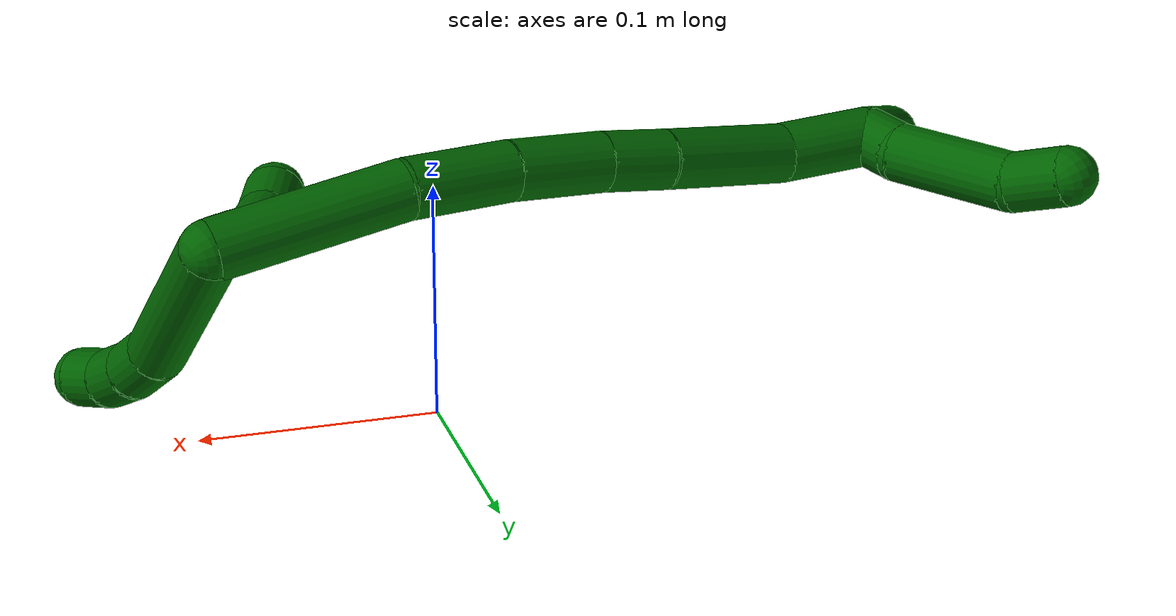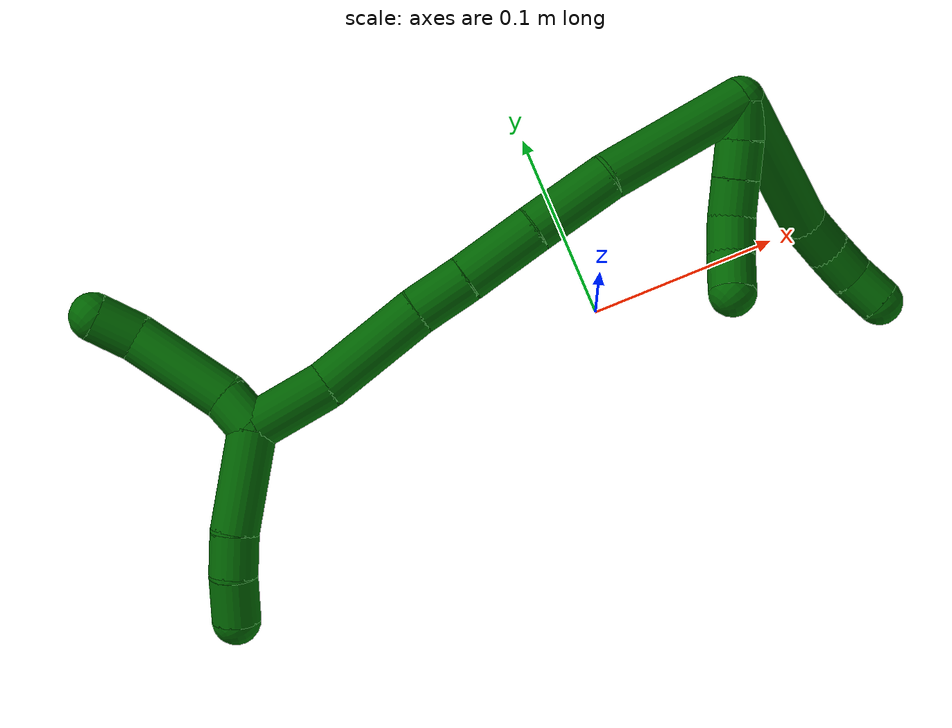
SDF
<sdf version="1.7">
 <world name="default">
  <model name="6">
   <static>0</static>
   <link name="6">
    <collision name="collision-cylinder-e_1_2_8">
     <pose>0.016003 -0.04045 -0.000589 1.58536 0.376682 0.382076</pose>
     <geometry><cylinder><radius>0.0125</radius><length>0.087009</length></cylinder></geometry>
     <surface>
      <friction><ode><mu>1.16</mu><mu2>1.16</mu2><slip1>0</slip1><slip2>0</slip2></ode></friction>
      <contact><ode><kp>1e+06</kp><kd>1</kd><max_vel>0</max_vel><min_depth>0.001</min_depth></ode></contact>
     </surface>
    </collision>
    <visual name="visual-cylinder-e_1_2_8">
     <pose>0.016003 -0.04045 -0.000589 1.58536 0.376682 0.382076</pose>
     <geometry><cylinder><radius>0.0125</radius><length>0.087009</length></cylinder></geometry>
     <material><ambient>0 0.392157 0.003922 1</ambient></material>
    </visual>
    <collision name="collision-cylinder-e_2_8_9">
     <pose>0.037852 -0.090353 -0.002786 1.73926 0.547586 0.642259</pose>
     <geometry><cylinder><radius>0.0125</radius><length>0.022459</length></cylinder></geometry>
     <surface>
      <friction><ode><mu>1.16</mu><mu2>1.16</mu2><slip1>0</slip1><slip2>0</slip2></ode></friction>
      <contact><ode><kp>1e+06</kp><kd>1</kd><max_vel>0</max_vel><min_depth>0.001</min_depth></ode></contact>
     </surface>
    </collision>
    <visual name="visual-cylinder-e_2_8_9">
     <pose>0.037852 -0.090353 -0.002786 1.73926 0.547586 0.642259</pose>
     <geometry><cylinder><radius>0.0125</radius><length>0.022459</length></cylinder></geometry>
     <material><ambient>0 0.392157 0.003922 1</ambient></material>
    </visual>
    <collision name="collision-cylinder-e_3_9_10">
     <pose>0.050315 -0.107416 -0.005595 1.72731 0.709486 0.818008</pose>
     <geometry><cylinder><radius>0.0125</radius><length>0.020314</length></cylinder></geometry>
     <surface>
      <friction><ode><mu>1.16</mu><mu2>1.16</mu2><slip1>0</slip1><slip2>0</slip2></ode></friction>
      <contact><ode><kp>1e+06</kp><kd>1</kd><max_vel>0</max_vel><min_depth>0.001</min_depth></ode></contact>
     </surface>
    </collision>
    <visual name="visual-cylinder-e_3_9_10">
     <pose>0.050315 -0.107416 -0.005595 1.72731 0.709486 0.818008</pose>
     <geometry><cylinder><radius>0.0125</radius><length>0.020314</length></cylinder></geometry>
     <material><ambient>0 0.392157 0.003922 1</ambient></material>
    </visual>
    <collision name="collision-cylinder-e_4_10_6">
     <pose>0.065017 -0.120925 -0.008221 1.80799 0.927084 1.13167</pose>
     <geometry><cylinder><radius>0.0125</radius><length>0.020218</length></cylinder></geometry>
     <surface>
      <friction><ode><mu>1.16</mu><mu2>1.16</mu2><slip1>0</slip1><slip2>0</slip2></ode></friction>
      <contact><ode><kp>1e+06</kp><kd>1</kd><max_vel>0</max_vel><min_depth>0.001</min_depth></ode></contact>
     </surface>
    </collision>
    <visual name="visual-cylinder-e_4_10_6">
     <pose>0.065017 -0.120925 -0.008221 1.80799 0.927084 1.13167</pose>
     <geometry><cylinder><radius>0.0125</radius><length>0.020218</length></cylinder></geometry>
     <material><ambient>0 0.392157 0.003922 1</ambient></material>
    </visual>
    <collision name="collision-cylinder-e_1_2_11">
     <pose>0.004958 -0.005876 0.006395 0.743188 0.51873 0.206074</pose>
     <geometry><cylinder><radius>0.0125</radius><length>0.02</length></cylinder></geometry>
     <surface>
      <friction><ode><mu>1.16</mu><mu2>1.16</mu2><slip1>0</slip1><slip2>0</slip2></ode></friction>
      <contact><ode><kp>1e+06</kp><kd>1</kd><max_vel>0</max_vel><min_depth>0.001</min_depth></ode></contact>
     </surface>
    </collision>
    <visual name="visual-cylinder-e_1_2_11">
     <pose>0.004958 -0.005876 0.006395 0.743188 0.51873 0.206074</pose>
     <geometry><cylinder><radius>0.0125</radius><length>0.02</length></cylinder></geometry>
     <material><ambient>0 0.392157 0.003922 1</ambient></material>
    </visual>
    <collision name="collision-cylinder-e_2_11_12">
     <pose>0.014356 -0.017275 0.019845 0.664104 0.460145 0.161177</pose>
     <geometry><cylinder><radius>0.0125</radius><length>0.02</length></cylinder></geometry>
     <surface>
      <friction><ode><mu>1.16</mu><mu2>1.16</mu2><slip1>0</slip1><slip2>0</slip2></ode></friction>
      <contact><ode><kp>1e+06</kp><kd>1</kd><max_vel>0</max_vel><min_depth>0.001</min_depth></ode></contact>
     </surface>
    </collision>
    <visual name="visual-cylinder-e_2_11_12">
     <pose>0.014356 -0.017275 0.019845 0.664104 0.460145 0.161177</pose>
     <geometry><cylinder><radius>0.0125</radius><length>0.02</length></cylinder></geometry>
     <material><ambient>0 0.392157 0.003922 1</ambient></material>
    </visual>
    <collision name="collision-cylinder-e_3_12_13">
     <pose>0.023171 -0.028484 0.033867 0.684535 0.452656 0.163722</pose>
     <geometry><cylinder><radius>0.0125</radius><length>0.02</length></cylinder></geometry>
     <surface>
      <friction><ode><mu>1.16</mu><mu2>1.16</mu2><slip1>0</slip1><slip2>0</slip2></ode></friction>
      <contact><ode><kp>1e+06</kp><kd>1</kd><max_vel>0</max_vel><min_depth>0.001</min_depth></ode></contact>
     </surface>
    </collision>
    <visual name="visual-cylinder-e_3_12_13">
     <pose>0.023171 -0.028484 0.033867 0.684535 0.452656 0.163722</pose>
     <geometry><cylinder><radius>0.0125</radius><length>0.02</length></cylinder></geometry>
     <material><ambient>0 0.392157 0.003922 1</ambient></material>
    </visual>
    <collision name="collision-cylinder-e_4_13_14">
     <pose>0.033673 -0.037679 0.047914 0.460177 0.659754 0.160057</pose>
     <geometry><cylinder><radius>0.0125</radius><length>0.02</length></cylinder></geometry>
     <surface>
      <friction><ode><mu>1.16</mu><mu2>1.16</mu2><slip1>0</slip1><slip2>0</slip2></ode></friction>
      <contact><ode><kp>1e+06</kp><kd>1</kd><max_vel>0</max_vel><min_depth>0.001</min_depth></ode></contact>
     </surface>
    </collision>
    <visual name="visual-cylinder-e_4_13_14">
     <pose>0.033673 -0.037679 0.047914 0.460177 0.659754 0.160057</pose>
     <geometry><cylinder><radius>0.0125</radius><length>0.02</length></cylinder></geometry>
     <material><ambient>0 0.392157 0.003922 1</ambient></material>
    </visual>
    <collision name="collision-cylinder-e_5_14_5">
     <pose>0.046763 -0.042855 0.061977 0.234288 0.76991 0.095291</pose>
     <geometry><cylinder><radius>0.0125</radius><length>0.02</length></cylinder></geometry>
     <surface>
      <friction><ode><mu>1.16</mu><mu2>1.16</mu2><slip1>0</slip1><slip2>0</slip2></ode></friction>
      <contact><ode><kp>1e+06</kp><kd>1</kd><max_vel>0</max_vel><min_depth>0.001</min_depth></ode></contact>
     </surface>
    </collision>
    <visual name="visual-cylinder-e_5_14_5">
     <pose>0.046763 -0.042855 0.061977 0.234288 0.76991 0.095291</pose>
     <geometry><cylinder><radius>0.0125</radius><length>0.02</length></cylinder></geometry>
     <material><ambient>0 0.392157 0.003922 1</ambient></material>
    </visual>
    <collision name="collision-cylinder-e_1_2_15">
     <pose>-0.007936 0.003074 0.039704 -0.077268 -0.196711 0.007628</pose>
     <geometry><cylinder><radius>0.0125</radius><length>0.081212</length></cylinder></geometry>
     <surface>
      <friction><ode><mu>1.16</mu><mu2>1.16</mu2><slip1>0</slip1><slip2>0</slip2></ode></friction>
      <contact><ode><kp>1e+06</kp><kd>1</kd><max_vel>0</max_vel><min_depth>0.001</min_depth></ode></contact>
     </surface>
    </collision>
    <visual name="visual-cylinder-e_1_2_15">
     <pose>-0.007936 0.003074 0.039704 -0.077268 -0.196711 0.007628</pose>
     <geometry><cylinder><radius>0.0125</radius><length>0.081212</length></cylinder></geometry>
     <material><ambient>0 0.392157 0.003922 1</ambient></material>
    </visual>
    <collision name="collision-cylinder-e_2_15_16">
     <pose>-0.02042 0.004025 0.101785 0.094613 -0.19961 -0.009481</pose>
     <geometry><cylinder><radius>0.0125</radius><length>0.045865</length></cylinder></geometry>
     <surface>
      <friction><ode><mu>1.16</mu><mu2>1.16</mu2><slip1>0</slip1><slip2>0</slip2></ode></friction>
      <contact><ode><kp>1e+06</kp><kd>1</kd><max_vel>0</max_vel><min_depth>0.001</min_depth></ode></contact>
     </surface>
    </collision>
    <visual name="visual-cylinder-e_2_15_16">
     <pose>-0.02042 0.004025 0.101785 0.094613 -0.19961 -0.009481</pose>
     <geometry><cylinder><radius>0.0125</radius><length>0.045865</length></cylinder></geometry>
     <material><ambient>0 0.392157 0.003922 1</ambient></material>
    </visual>
    <collision name="collision-cylinder-e_3_16_17">
     <pose>-0.029653 -0.001489 0.144391 0.16604 -0.224604 -0.018768</pose>
     <geometry><cylinder><radius>0.0125</radius><length>0.04208</length></cylinder></geometry>
     <surface>
      <friction><ode><mu>1.16</mu><mu2>1.16</mu2><slip1>0</slip1><slip2>0</slip2></ode></friction>
      <contact><ode><kp>1e+06</kp><kd>1</kd><max_vel>0</max_vel><min_depth>0.001</min_depth></ode></contact>
     </surface>
    </collision>
    <visual name="visual-cylinder-e_3_16_17">
     <pose>-0.029653 -0.001489 0.144391 0.16604 -0.224604 -0.018768</pose>
     <geometry><cylinder><radius>0.0125</radius><length>0.04208</length></cylinder></geometry>
     <material><ambient>0 0.392157 0.003922 1</ambient></material>
    </visual>
    <collision name="collision-cylinder-e_4_17_18">
     <pose>-0.038424 -0.007551 0.178563 0.189338 -0.280199 -0.02678</pose>
     <geometry><cylinder><radius>0.0125</radius><length>0.029545</length></cylinder></geometry>
     <surface>
      <friction><ode><mu>1.16</mu><mu2>1.16</mu2><slip1>0</slip1><slip2>0</slip2></ode></friction>
      <contact><ode><kp>1e+06</kp><kd>1</kd><max_vel>0</max_vel><min_depth>0.001</min_depth></ode></contact>
     </surface>
    </collision>
    <visual name="visual-cylinder-e_4_17_18">
     <pose>-0.038424 -0.007551 0.178563 0.189338 -0.280199 -0.02678</pose>
     <geometry><cylinder><radius>0.0125</radius><length>0.029545</length></cylinder></geometry>
     <material><ambient>0 0.392157 0.003922 1</ambient></material>
    </visual>
    <collision name="collision-cylinder-e_5_18_19">
     <pose>-0.0485 -0.016894 0.220612 0.233047 -0.204469 -0.024016</pose>
     <geometry><cylinder><radius>0.0125</radius><length>0.059004</length></cylinder></geometry>
     <surface>
      <friction><ode><mu>1.16</mu><mu2>1.16</mu2><slip1>0</slip1><slip2>0</slip2></ode></friction>
      <contact><ode><kp>1e+06</kp><kd>1</kd><max_vel>0</max_vel><min_depth>0.001</min_depth></ode></contact>
     </surface>
    </collision>
    <visual name="visual-cylinder-e_5_18_19">
     <pose>-0.0485 -0.016894 0.220612 0.233047 -0.204469 -0.024016</pose>
     <geometry><cylinder><radius>0.0125</radius><length>0.059004</length></cylinder></geometry>
     <material><ambient>0 0.392157 0.003922 1</ambient></material>
    </visual>
    <collision name="collision-cylinder-e_6_19_1">
     <pose>-0.059866 -0.024012 0.269166 0.021846 -0.257038 -0.002823</pose>
     <geometry><cylinder><radius>0.0125</radius><length>0.042294</length></cylinder></geometry>
     <surface>
      <friction><ode><mu>1.16</mu><mu2>1.16</mu2><slip1>0</slip1><slip2>0</slip2></ode></friction>
      <contact><ode><kp>1e+06</kp><kd>1</kd><max_vel>0</max_vel><min_depth>0.001</min_depth></ode></contact>
     </surface>
    </collision>
    <visual name="visual-cylinder-e_6_19_1">
     <pose>-0.059866 -0.024012 0.269166 0.021846 -0.257038 -0.002823</pose>
     <geometry><cylinder><radius>0.0125</radius><length>0.042294</length></cylinder></geometry>
     <material><ambient>0 0.392157 0.003922 1</ambient></material>
    </visual>
    <collision name="collision-cylinder-e_1_1_20">
     <pose>-0.055494 -0.039932 0.309213 0.668261 0.372163 0.130522</pose>
     <geometry><cylinder><radius>0.0125</radius><length>0.053613</length></cylinder></geometry>
     <surface>
      <friction><ode><mu>1.16</mu><mu2>1.16</mu2><slip1>0</slip1><slip2>0</slip2></ode></friction>
      <contact><ode><kp>1e+06</kp><kd>1</kd><max_vel>0</max_vel><min_depth>0.001</min_depth></ode></contact>
     </surface>
    </collision>
    <visual name="visual-cylinder-e_1_1_20">
     <pose>-0.055494 -0.039932 0.309213 0.668261 0.372163 0.130522</pose>
     <geometry><cylinder><radius>0.0125</radius><length>0.053613</length></cylinder></geometry>
     <material><ambient>0 0.392157 0.003922 1</ambient></material>
    </visual>
    <collision name="collision-cylinder-e_2_20_21">
     <pose>-0.041025 -0.062748 0.335682 0.818828 0.439029 0.193029</pose>
     <geometry><cylinder><radius>0.0125</radius><length>0.022217</length></cylinder></geometry>
     <surface>
      <friction><ode><mu>1.16</mu><mu2>1.16</mu2><slip1>0</slip1><slip2>0</slip2></ode></friction>
      <contact><ode><kp>1e+06</kp><kd>1</kd><max_vel>0</max_vel><min_depth>0.001</min_depth></ode></contact>
     </surface>
    </collision>
    <visual name="visual-cylinder-e_2_20_21">
     <pose>-0.041025 -0.062748 0.335682 0.818828 0.439029 0.193029</pose>
     <geometry><cylinder><radius>0.0125</radius><length>0.022217</length></cylinder></geometry>
     <material><ambient>0 0.392157 0.003922 1</ambient></material>
    </visual>
    <collision name="collision-cylinder-e_3_21_4">
     <pose>-0.031607 -0.079542 0.34844 1.01345 0.399143 0.223603</pose>
     <geometry><cylinder><radius>0.0125</radius><length>0.02417</length></cylinder></geometry>
     <surface>
      <friction><ode><mu>1.16</mu><mu2>1.16</mu2><slip1>0</slip1><slip2>0</slip2></ode></friction>
      <contact><ode><kp>1e+06</kp><kd>1</kd><max_vel>0</max_vel><min_depth>0.001</min_depth></ode></contact>
     </surface>
    </collision>
    <visual name="visual-cylinder-e_3_21_4">
     <pose>-0.031607 -0.079542 0.34844 1.01345 0.399143 0.223603</pose>
     <geometry><cylinder><radius>0.0125</radius><length>0.02417</length></cylinder></geometry>
     <material><ambient>0 0.392157 0.003922 1</ambient></material>
    </visual>
    <collision name="collision-cylinder-e_1_1_22">
     <pose>-0.075165 -0.021297 0.288841 -1.81029 -1.25379 1.49025</pose>
     <geometry><cylinder><radius>0.0125</radius><length>0.020886</length></cylinder></geometry>
     <surface>
      <friction><ode><mu>1.16</mu><mu2>1.16</mu2><slip1>0</slip1><slip2>0</slip2></ode></friction>
      <contact><ode><kp>1e+06</kp><kd>1</kd><max_vel>0</max_vel><min_depth>0.001</min_depth></ode></contact>
     </surface>
    </collision>
    <visual name="visual-cylinder-e_1_1_22">
     <pose>-0.075165 -0.021297 0.288841 -1.81029 -1.25379 1.49025</pose>
     <geometry><cylinder><radius>0.0125</radius><length>0.020886</length></cylinder></geometry>
     <material><ambient>0 0.392157 0.003922 1</ambient></material>
    </visual>
    <collision name="collision-cylinder-e_2_22_23">
     <pose>-0.11057 -0.009407 0.293421 -1.02064 -1.1888 0.723463</pose>
     <geometry><cylinder><radius>0.0125</radius><length>0.054925</length></cylinder></geometry>
     <surface>
      <friction><ode><mu>1.16</mu><mu2>1.16</mu2><slip1>0</slip1><slip2>0</slip2></ode></friction>
      <contact><ode><kp>1e+06</kp><kd>1</kd><max_vel>0</max_vel><min_depth>0.001</min_depth></ode></contact>
     </surface>
    </collision>
    <visual name="visual-cylinder-e_2_22_23">
     <pose>-0.11057 -0.009407 0.293421 -1.02064 -1.1888 0.723463</pose>
     <geometry><cylinder><radius>0.0125</radius><length>0.054925</length></cylinder></geometry>
     <material><ambient>0 0.392157 0.003922 1</ambient></material>
    </visual>
    <collision name="collision-cylinder-e_3_23_3">
     <pose>-0.145084 0.005754 0.303603 -0.926888 -0.843031 0.44088</pose>
     <geometry><cylinder><radius>0.0125</radius><length>0.024189</length></cylinder></geometry>
     <surface>
      <friction><ode><mu>1.16</mu><mu2>1.16</mu2><slip1>0</slip1><slip2>0</slip2></ode></friction>
      <contact><ode><kp>1e+06</kp><kd>1</kd><max_vel>0</max_vel><min_depth>0.001</min_depth></ode></contact>
     </surface>
    </collision>
    <visual name="visual-cylinder-e_3_23_3">
     <pose>-0.145084 0.005754 0.303603 -0.926888 -0.843031 0.44088</pose>
     <geometry><cylinder><radius>0.0125</radius><length>0.024189</length></cylinder></geometry>
     <material><ambient>0 0.392157 0.003922 1</ambient></material>
    </visual>
    <collision name="collision-sphere-3">
     <pose>-0.154114 0.012188 0.308433 0 -0 0</pose>
     <geometry><sphere><radius>0.0125</radius></sphere></geometry>
     <surface>
      <friction><ode><mu>1.16</mu><mu2>1.16</mu2><slip1>0</slip1><slip2>0</slip2></ode></friction>
      <contact><ode><kp>1e+06</kp><kd>1</kd><max_vel>0</max_vel><min_depth>0.001</min_depth></ode></contact>
     </surface>
    </collision>
    <visual name="visual-sphere-3">
     <pose>-0.154114 0.012188 0.308433 0 -0 0</pose>
     <geometry><sphere><radius>0.0125</radius></sphere></geometry>
     <material><ambient>0 0.392157 0.003922 1</ambient></material>
    </visual>
    <collision name="collision-sphere-23">
     <pose>-0.136053 -0.000681 0.298774 0 -0 0</pose>
     <geometry><sphere><radius>0.0125</radius></sphere></geometry>
     <surface>
      <friction><ode><mu>1.16</mu><mu2>1.16</mu2><slip1>0</slip1><slip2>0</slip2></ode></friction>
      <contact><ode><kp>1e+06</kp><kd>1</kd><max_vel>0</max_vel><min_depth>0.001</min_depth></ode></contact>
     </surface>
    </collision>
    <visual name="visual-sphere-23">
     <pose>-0.136053 -0.000681 0.298774 0 -0 0</pose>
     <geometry><sphere><radius>0.0125</radius></sphere></geometry>
     <material><ambient>0 0.392157 0.003922 1</ambient></material>
    </visual>
    <collision name="collision-sphere-22">
     <pose>-0.085087 -0.018134 0.288069 0 -0 0</pose>
     <geometry><sphere><radius>0.0125</radius></sphere></geometry>
     <surface>
      <friction><ode><mu>1.16</mu><mu2>1.16</mu2><slip1>0</slip1><slip2>0</slip2></ode></friction>
      <contact><ode><kp>1e+06</kp><kd>1</kd><max_vel>0</max_vel><min_depth>0.001</min_depth></ode></contact>
     </surface>
    </collision>
    <visual name="visual-sphere-22">
     <pose>-0.085087 -0.018134 0.288069 0 -0 0</pose>
     <geometry><sphere><radius>0.0125</radius></sphere></geometry>
     <material><ambient>0 0.392157 0.003922 1</ambient></material>
    </visual>
    <collision name="collision-sphere-4">
     <pose>-0.02691 -0.088992 0.35433 0 -0 0</pose>
     <geometry><sphere><radius>0.0125</radius></sphere></geometry>
     <surface>
      <friction><ode><mu>1.16</mu><mu2>1.16</mu2><slip1>0</slip1><slip2>0</slip2></ode></friction>
      <contact><ode><kp>1e+06</kp><kd>1</kd><max_vel>0</max_vel><min_depth>0.001</min_depth></ode></contact>
     </surface>
    </collision>
    <visual name="visual-sphere-4">
     <pose>-0.02691 -0.088992 0.35433 0 -0 0</pose>
     <geometry><sphere><radius>0.0125</radius></sphere></geometry>
     <material><ambient>0 0.392157 0.003922 1</ambient></material>
    </visual>
    <collision name="collision-sphere-21">
     <pose>-0.036303 -0.070092 0.34255 0 -0 0</pose>
     <geometry><sphere><radius>0.0125</radius></sphere></geometry>
     <surface>
      <friction><ode><mu>1.16</mu><mu2>1.16</mu2><slip1>0</slip1><slip2>0</slip2></ode></friction>
      <contact><ode><kp>1e+06</kp><kd>1</kd><max_vel>0</max_vel><min_depth>0.001</min_depth></ode></contact>
     </surface>
    </collision>
    <visual name="visual-sphere-21">
     <pose>-0.036303 -0.070092 0.34255 0 -0 0</pose>
     <geometry><sphere><radius>0.0125</radius></sphere></geometry>
     <material><ambient>0 0.392157 0.003922 1</ambient></material>
    </visual>
    <collision name="collision-sphere-20">
     <pose>-0.045747 -0.055404 0.328813 0 -0 0</pose>
     <geometry><sphere><radius>0.0125</radius></sphere></geometry>
     <surface>
      <friction><ode><mu>1.16</mu><mu2>1.16</mu2><slip1>0</slip1><slip2>0</slip2></ode></friction>
      <contact><ode><kp>1e+06</kp><kd>1</kd><max_vel>0</max_vel><min_depth>0.001</min_depth></ode></contact>
     </surface>
    </collision>
    <visual name="visual-sphere-20">
     <pose>-0.045747 -0.055404 0.328813 0 -0 0</pose>
     <geometry><sphere><radius>0.0125</radius></sphere></geometry>
     <material><ambient>0 0.392157 0.003922 1</ambient></material>
    </visual>
    <collision name="collision-sphere-11">
     <pose>0.009916 -0.011753 0.012789 0 -0 0</pose>
     <geometry><sphere><radius>0.0125</radius></sphere></geometry>
     <surface>
      <friction><ode><mu>1.16</mu><mu2>1.16</mu2><slip1>0</slip1><slip2>0</slip2></ode></friction>
      <contact><ode><kp>1e+06</kp><kd>1</kd><max_vel>0</max_vel><min_depth>0.001</min_depth></ode></contact>
     </surface>
    </collision>
    <visual name="visual-sphere-11">
     <pose>0.009916 -0.011753 0.012789 0 -0 0</pose>
     <geometry><sphere><radius>0.0125</radius></sphere></geometry>
     <material><ambient>0 0.392157 0.003922 1</ambient></material>
    </visual>
    <collision name="collision-sphere-6">
     <pose>0.073103 -0.126822 -0.009647 0 -0 0</pose>
     <geometry><sphere><radius>0.0125</radius></sphere></geometry>
     <surface>
      <friction><ode><mu>1.16</mu><mu2>1.16</mu2><slip1>0</slip1><slip2>0</slip2></ode></friction>
      <contact><ode><kp>1e+06</kp><kd>1</kd><max_vel>0</max_vel><min_depth>0.001</min_depth></ode></contact>
     </surface>
    </collision>
    <visual name="visual-sphere-6">
     <pose>0.073103 -0.126822 -0.009647 0 -0 0</pose>
     <geometry><sphere><radius>0.0125</radius></sphere></geometry>
     <material><ambient>0 0.392157 0.003922 1</ambient></material>
    </visual>
    <collision name="collision-sphere-10">
     <pose>0.056931 -0.115028 -0.006796 0 -0 0</pose>
     <geometry><sphere><radius>0.0125</radius></sphere></geometry>
     <surface>
      <friction><ode><mu>1.16</mu><mu2>1.16</mu2><slip1>0</slip1><slip2>0</slip2></ode></friction>
      <contact><ode><kp>1e+06</kp><kd>1</kd><max_vel>0</max_vel><min_depth>0.001</min_depth></ode></contact>
     </surface>
    </collision>
    <visual name="visual-sphere-10">
     <pose>0.056931 -0.115028 -0.006796 0 -0 0</pose>
     <geometry><sphere><radius>0.0125</radius></sphere></geometry>
     <material><ambient>0 0.392157 0.003922 1</ambient></material>
    </visual>
    <collision name="collision-sphere-9">
     <pose>0.043698 -0.099804 -0.004394 0 -0 0</pose>
     <geometry><sphere><radius>0.0125</radius></sphere></geometry>
     <surface>
      <friction><ode><mu>1.16</mu><mu2>1.16</mu2><slip1>0</slip1><slip2>0</slip2></ode></friction>
      <contact><ode><kp>1e+06</kp><kd>1</kd><max_vel>0</max_vel><min_depth>0.001</min_depth></ode></contact>
     </surface>
    </collision>
    <visual name="visual-sphere-9">
     <pose>0.043698 -0.099804 -0.004394 0 -0 0</pose>
     <geometry><sphere><radius>0.0125</radius></sphere></geometry>
     <material><ambient>0 0.392157 0.003922 1</ambient></material>
    </visual>
    <collision name="collision-sphere-2">
     <geometry><sphere><radius>0.0125</radius></sphere></geometry>
     <surface>
      <friction><ode><mu>1.16</mu><mu2>1.16</mu2><slip1>0</slip1><slip2>0</slip2></ode></friction>
      <contact><ode><kp>1e+06</kp><kd>1</kd><max_vel>0</max_vel><min_depth>0.001</min_depth></ode></contact>
     </surface>
    </collision>
    <visual name="visual-sphere-2">
     <geometry><sphere><radius>0.0125</radius></sphere></geometry>
     <material><ambient>0 0.392157 0.003922 1</ambient></material>
    </visual>
    <collision name="collision-sphere-19">
     <pose>-0.05449 -0.023565 0.248718 0 -0 0</pose>
     <geometry><sphere><radius>0.0125</radius></sphere></geometry>
     <surface>
      <friction><ode><mu>1.16</mu><mu2>1.16</mu2><slip1>0</slip1><slip2>0</slip2></ode></friction>
      <contact><ode><kp>1e+06</kp><kd>1</kd><max_vel>0</max_vel><min_depth>0.001</min_depth></ode></contact>
     </surface>
    </collision>
    <visual name="visual-sphere-19">
     <pose>-0.05449 -0.023565 0.248718 0 -0 0</pose>
     <geometry><sphere><radius>0.0125</radius></sphere></geometry>
     <material><ambient>0 0.392157 0.003922 1</ambient></material>
    </visual>
    <collision name="collision-sphere-8">
     <pose>0.032005 -0.080901 -0.001179 0 -0 0</pose>
     <geometry><sphere><radius>0.0125</radius></sphere></geometry>
     <surface>
      <friction><ode><mu>1.16</mu><mu2>1.16</mu2><slip1>0</slip1><slip2>0</slip2></ode></friction>
      <contact><ode><kp>1e+06</kp><kd>1</kd><max_vel>0</max_vel><min_depth>0.001</min_depth></ode></contact>
     </surface>
    </collision>
    <visual name="visual-sphere-8">
     <pose>0.032005 -0.080901 -0.001179 0 -0 0</pose>
     <geometry><sphere><radius>0.0125</radius></sphere></geometry>
     <material><ambient>0 0.392157 0.003922 1</ambient></material>
    </visual>
    <collision name="collision-sphere-12">
     <pose>0.018797 -0.022797 0.0269 0 -0 0</pose>
     <geometry><sphere><radius>0.0125</radius></sphere></geometry>
     <surface>
      <friction><ode><mu>1.16</mu><mu2>1.16</mu2><slip1>0</slip1><slip2>0</slip2></ode></friction>
      <contact><ode><kp>1e+06</kp><kd>1</kd><max_vel>0</max_vel><min_depth>0.001</min_depth></ode></contact>
     </surface>
    </collision>
    <visual name="visual-sphere-12">
     <pose>0.018797 -0.022797 0.0269 0 -0 0</pose>
     <geometry><sphere><radius>0.0125</radius></sphere></geometry>
     <material><ambient>0 0.392157 0.003922 1</ambient></material>
    </visual>
    <collision name="collision-sphere-13">
     <pose>0.027544 -0.03417 0.040834 0 -0 0</pose>
     <geometry><sphere><radius>0.0125</radius></sphere></geometry>
     <surface>
      <friction><ode><mu>1.16</mu><mu2>1.16</mu2><slip1>0</slip1><slip2>0</slip2></ode></friction>
      <contact><ode><kp>1e+06</kp><kd>1</kd><max_vel>0</max_vel><min_depth>0.001</min_depth></ode></contact>
     </surface>
    </collision>
    <visual name="visual-sphere-13">
     <pose>0.027544 -0.03417 0.040834 0 -0 0</pose>
     <geometry><sphere><radius>0.0125</radius></sphere></geometry>
     <material><ambient>0 0.392157 0.003922 1</ambient></material>
    </visual>
    <collision name="collision-sphere-14">
     <pose>0.039803 -0.041188 0.054993 0 -0 0</pose>
     <geometry><sphere><radius>0.0125</radius></sphere></geometry>
     <surface>
      <friction><ode><mu>1.16</mu><mu2>1.16</mu2><slip1>0</slip1><slip2>0</slip2></ode></friction>
      <contact><ode><kp>1e+06</kp><kd>1</kd><max_vel>0</max_vel><min_depth>0.001</min_depth></ode></contact>
     </surface>
    </collision>
    <visual name="visual-sphere-14">
     <pose>0.039803 -0.041188 0.054993 0 -0 0</pose>
     <geometry><sphere><radius>0.0125</radius></sphere></geometry>
     <material><ambient>0 0.392157 0.003922 1</ambient></material>
    </visual>
    <collision name="collision-sphere-5">
     <pose>0.053724 -0.044522 0.06896 0 -0 0</pose>
     <geometry><sphere><radius>0.0125</radius></sphere></geometry>
     <surface>
      <friction><ode><mu>1.16</mu><mu2>1.16</mu2><slip1>0</slip1><slip2>0</slip2></ode></friction>
      <contact><ode><kp>1e+06</kp><kd>1</kd><max_vel>0</max_vel><min_depth>0.001</min_depth></ode></contact>
     </surface>
    </collision>
    <visual name="visual-sphere-5">
     <pose>0.053724 -0.044522 0.06896 0 -0 0</pose>
     <geometry><sphere><radius>0.0125</radius></sphere></geometry>
     <material><ambient>0 0.392157 0.003922 1</ambient></material>
    </visual>
    <collision name="collision-sphere-15">
     <pose>-0.015873 0.006148 0.079409 0 -0 0</pose>
     <geometry><sphere><radius>0.0125</radius></sphere></geometry>
     <surface>
      <friction><ode><mu>1.16</mu><mu2>1.16</mu2><slip1>0</slip1><slip2>0</slip2></ode></friction>
      <contact><ode><kp>1e+06</kp><kd>1</kd><max_vel>0</max_vel><min_depth>0.001</min_depth></ode></contact>
     </surface>
    </collision>
    <visual name="visual-sphere-15">
     <pose>-0.015873 0.006148 0.079409 0 -0 0</pose>
     <geometry><sphere><radius>0.0125</radius></sphere></geometry>
     <material><ambient>0 0.392157 0.003922 1</ambient></material>
    </visual>
    <collision name="collision-sphere-16">
     <pose>-0.024967 0.001901 0.124162 0 -0 0</pose>
     <geometry><sphere><radius>0.0125</radius></sphere></geometry>
     <surface>
      <friction><ode><mu>1.16</mu><mu2>1.16</mu2><slip1>0</slip1><slip2>0</slip2></ode></friction>
      <contact><ode><kp>1e+06</kp><kd>1</kd><max_vel>0</max_vel><min_depth>0.001</min_depth></ode></contact>
     </surface>
    </collision>
    <visual name="visual-sphere-16">
     <pose>-0.024967 0.001901 0.124162 0 -0 0</pose>
     <geometry><sphere><radius>0.0125</radius></sphere></geometry>
     <material><ambient>0 0.392157 0.003922 1</ambient></material>
    </visual>
    <collision name="collision-sphere-17">
     <pose>-0.034339 -0.004879 0.164621 0 -0 0</pose>
     <geometry><sphere><radius>0.0125</radius></sphere></geometry>
     <surface>
      <friction><ode><mu>1.16</mu><mu2>1.16</mu2><slip1>0</slip1><slip2>0</slip2></ode></friction>
      <contact><ode><kp>1e+06</kp><kd>1</kd><max_vel>0</max_vel><min_depth>0.001</min_depth></ode></contact>
     </surface>
    </collision>
    <visual name="visual-sphere-17">
     <pose>-0.034339 -0.004879 0.164621 0 -0 0</pose>
     <geometry><sphere><radius>0.0125</radius></sphere></geometry>
     <material><ambient>0 0.392157 0.003922 1</ambient></material>
    </visual>
    <collision name="collision-sphere-18">
     <pose>-0.04251 -0.010223 0.192506 0 -0 0</pose>
     <geometry><sphere><radius>0.0125</radius></sphere></geometry>
     <surface>
      <friction><ode><mu>1.16</mu><mu2>1.16</mu2><slip1>0</slip1><slip2>0</slip2></ode></friction>
      <contact><ode><kp>1e+06</kp><kd>1</kd><max_vel>0</max_vel><min_depth>0.001</min_depth></ode></contact>
     </surface>
    </collision>
    <visual name="visual-sphere-18">
     <pose>-0.04251 -0.010223 0.192506 0 -0 0</pose>
     <geometry><sphere><radius>0.0125</radius></sphere></geometry>
     <material><ambient>0 0.392157 0.003922 1</ambient></material>
    </visual>
    <collision name="collision-sphere-1">
     <pose>-0.065242 -0.024459 0.289613 0 -0 0</pose>
     <geometry><sphere><radius>0.0125</radius></sphere></geometry>
     <surface>
      <friction><ode><mu>1.16</mu><mu2>1.16</mu2><slip1>0</slip1><slip2>0</slip2></ode></friction>
      <contact><ode><kp>1e+06</kp><kd>1</kd><max_vel>0</max_vel><min_depth>0.001</min_depth></ode></contact>
     </surface>
    </collision>
    <visual name="visual-sphere-1">
     <pose>-0.065242 -0.024459 0.289613 0 -0 0</pose>
     <geometry><sphere><radius>0.0125</radius></sphere></geometry>
     <material><ambient>0 0.392157 0.003922 1</ambient></material>
    </visual>
    <inertial>
     <pose>-0.024164 -0.02795 0.144803 0 -0 0</pose>
     <mass>0.75</mass>
     <inertia>
      <ixx>0.000208</ixx>
      <ixy>0</ixy>
      <ixz>0</ixz>
      <iyy>0.000156</iyy>
      <iyz>0</iyz>
      <izz>0.000106</izz>
     </inertia>
    </inertial>
   </link>
   <pose>0.100065 0.054915 0.102386 1.40216 -0.374528 -1.12427</pose>
  </model>
 </world>
</sdf>
